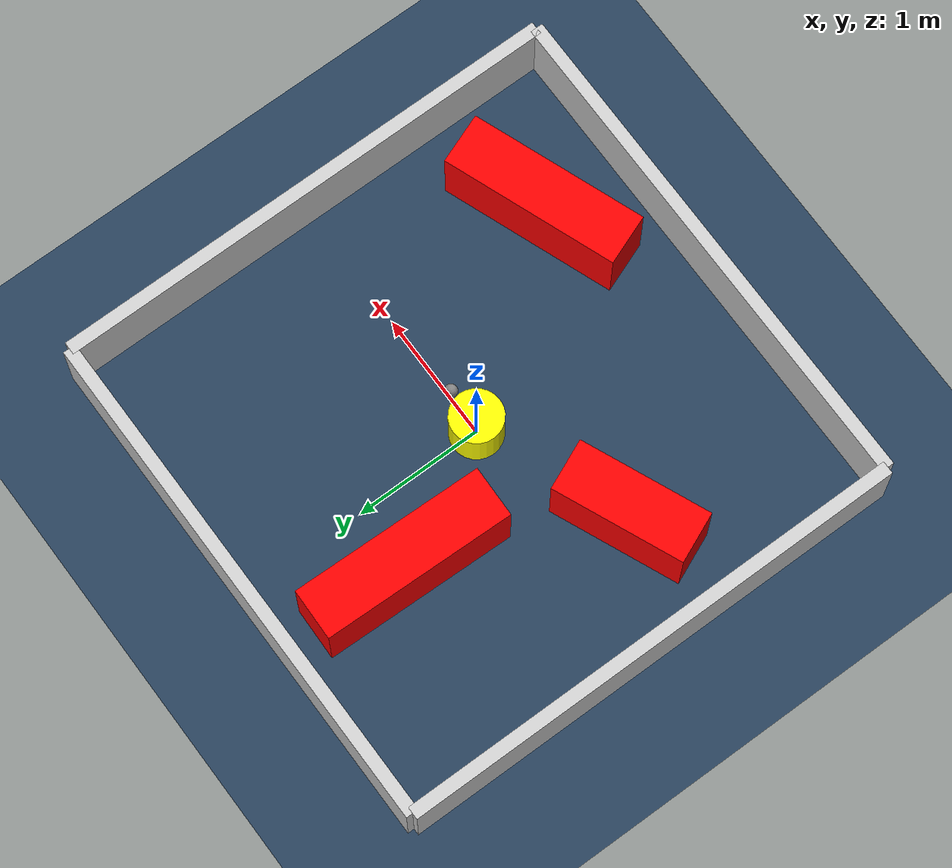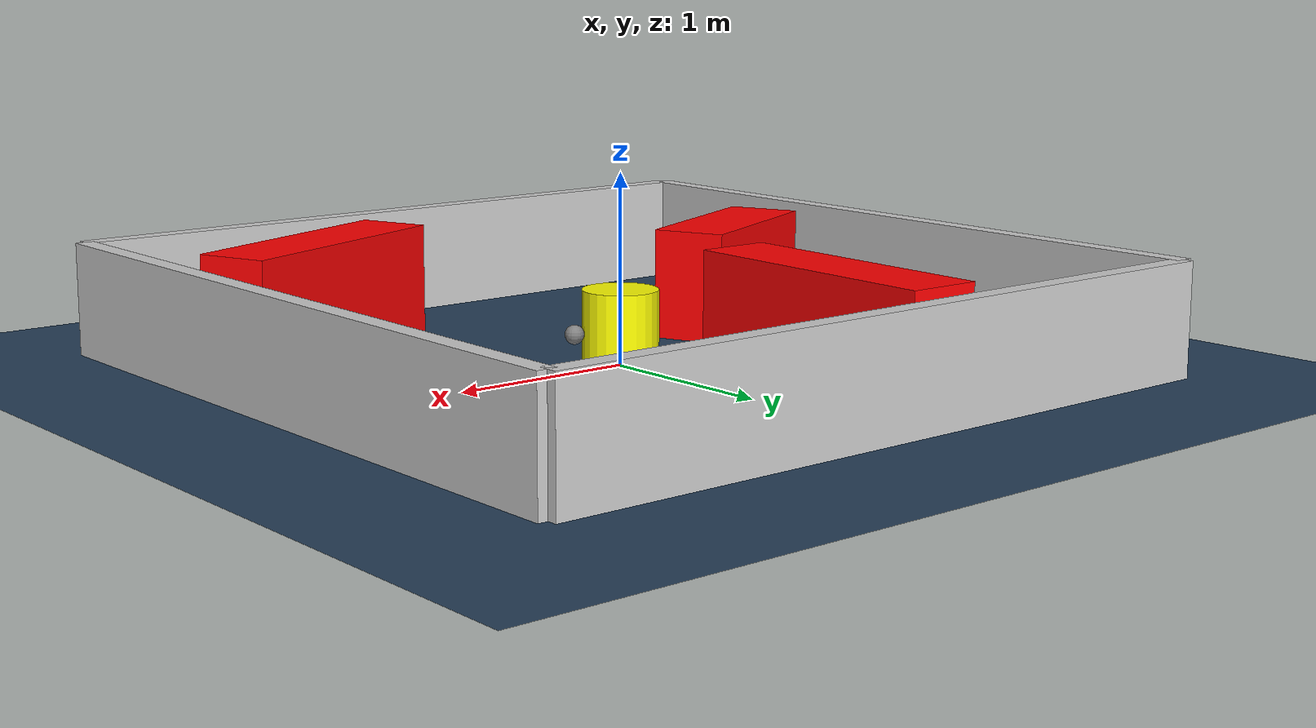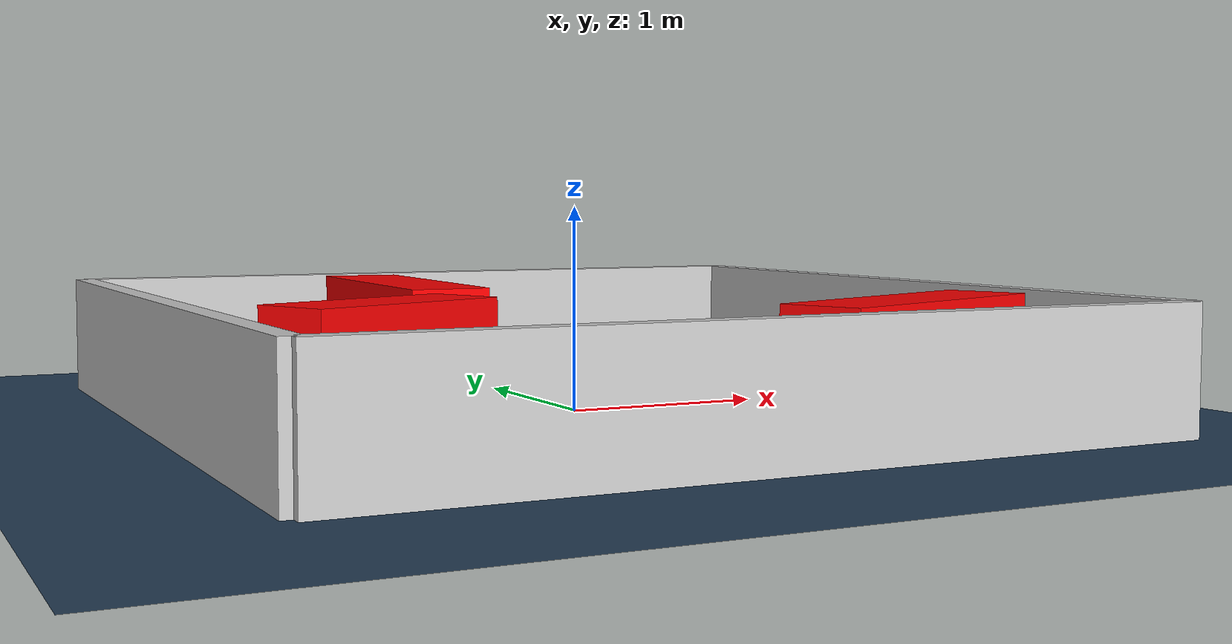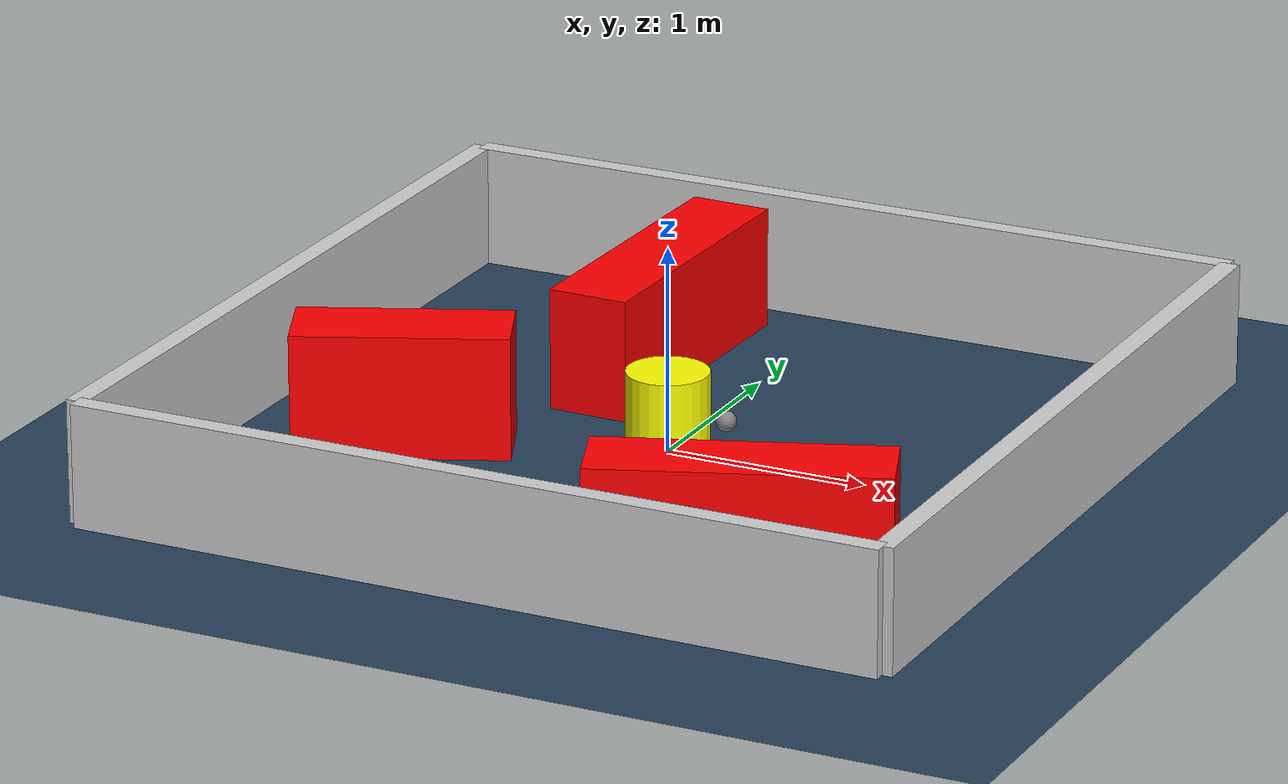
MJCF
<?xml version="1.0" ?>
<mujoco model="generated_environment">
  <option timestep="0.01" integrator="RK4" cone="elliptic"/>
  <default>
    <geom density="1"/>
  </default>
  <asset>
    <texture builtin="gradient" height="3072" rgb1="0.3 0.5 0.7" rgb2="0 0 0" type="skybox" width="512"/>
    <texture builtin="checker" height="300" mark="edge" markrgb="0.8 0.8 0.8" name="groundplane" rgb1="0.2 0.3 0.4" rgb2="0.1 0.2 0.3" type="2d" width="300"/>
    <material name="groundplane" reflectance="0.2" texrepeat="5 5" texture="groundplane" texuniform="true"/>
    <material name="robot" rgba="0.0 1.0 0.0 1"/>
  </asset>
  <worldbody>
    <light dir="0 0 -1" directional="true" pos="0 0 1.5"/>
    <geom condim="4" friction="1.0 0.005 0.001" material="groundplane" name="floor" size="0 0 0.05" type="plane"/>
    <body name="walls">
      <geom name="wall_1" condim="4" pos="-2.0 0.0 0.3" rgba="0.800000011920929 0.800000011920929 0.800000011920929 1.0" size="0.05 2.0 0.3" type="box"/>
      <geom name="wall_2" condim="4" pos="2.0 0.0 0.3" rgba="0.800000011920929 0.800000011920929 0.800000011920929 1.0" size="0.05 2.0 0.3" type="box"/>
      <geom name="wall_3" condim="4" pos="0.0 -2.0 0.3" rgba="0.800000011920929 0.800000011920929 0.800000011920929 1.0" size="2.0 0.05 0.3" type="box"/>
      <geom name="wall_4" condim="4" pos="0.0 2.0 0.3" rgba="0.800000011920929 0.800000011920929 0.800000011920929 1.0" size="2.0 0.05 0.3" type="box"/>
    </body>
    <body name="robot">
      <joint name="joint_x" type="slide" pos="0 0 0" axis="1 0 0"/>
      <joint name="joint_y" type="slide" pos="0 0 0" axis="0 1 0"/>
      <geom name="robot" type="sphere" pos="0.3 0.0 0.2" size="0.05" mass="5." friction="1.0 0.005 0.0001" condim="4" rgba="0.5 0.5 0.5 1.0"/>
      <site name="sensor_ball"/>
    </body>
    <body name="obstacle_movable_1">
      <geom name="obstacle_movable_1" condim="4" pos="0.0 0.0 0.2" euler="0 0 0.0" friction="1.0 0.005 0.001" rgba="1.0 1.0 0.0 1.0" size="0.2 0.2 0.0" type="cylinder" mass="0.1"/>
      <joint type="free"/>
    </body>
    <body name="obstacle_2_static">
      <geom name="obstacle_2_static" condim="4" pos="1.0016515291388928 -1.3189750335066752 0.3" euler="0 0 20.76271570842553" friction="1.0 0.005 0.001" rgba="1 0 0 1" size="0.6940794466831293 0.2 0.3" type="box"/>
    </body>
    <body name="obstacle_3_static">
      <geom name="obstacle_3_static" condim="4" pos="-0.5289174213946304 1.003342540179131 0.3" euler="0 0 88.64001940062379" friction="1.0 0.005 0.001" rgba="1 0 0 1" size="0.7486674551534472 0.2 0.3" type="box"/>
    </body>
    <body name="obstacle_4_static">
      <geom name="obstacle_4_static" condim="4" pos="-1.152598536146733 -0.45425018003061 0.3" euler="0 0 203.37885125271328" friction="1.0 0.005 0.001" rgba="1 0 0 1" size="0.5150043239765677 0.2 0.3" type="box"/>
    </body>
  </worldbody>
  <actuator>
    <motor name="actuator_x" joint="joint_x" gear="1" ctrlrange="-1 1"/>
    <motor name="actuator_y" joint="joint_y" gear="1" ctrlrange="-1 1"/>
  </actuator>
</mujoco>
